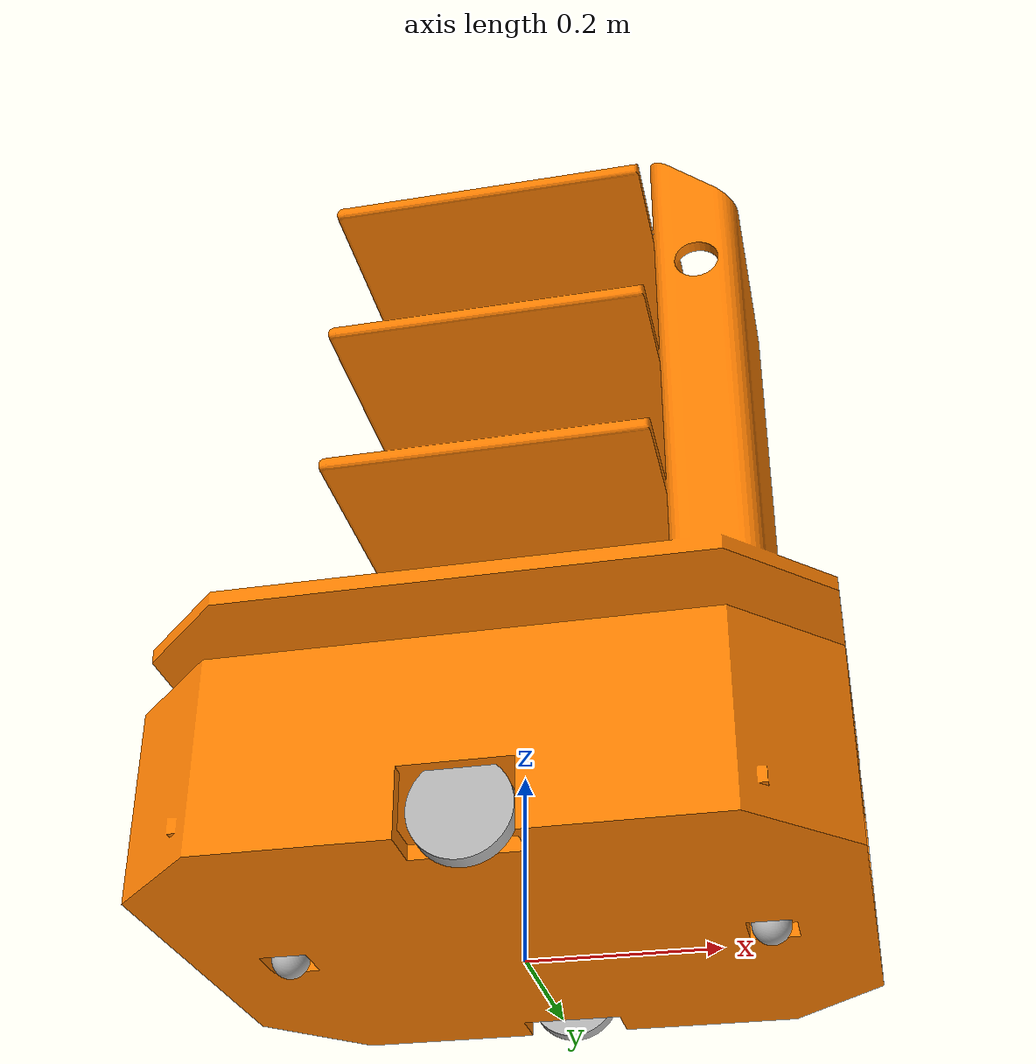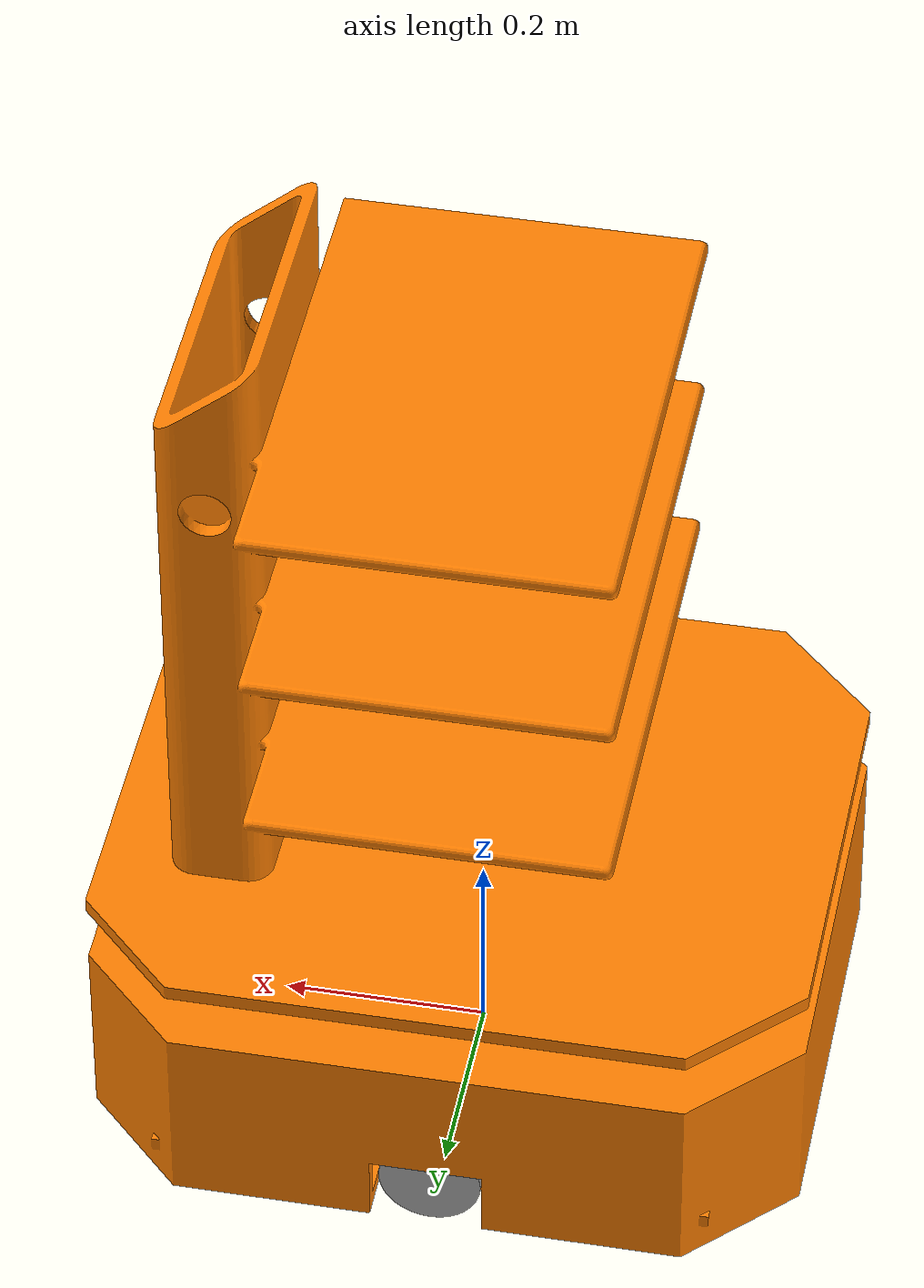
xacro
<?xml version="1.0" ?>
<robot name="shopmate_bot" xmlns:xacro="http://www.ros.org/wiki/xacro">

    <xacro:include filename="$(find shopmate_bot_description)/urdf/materials.xacro" />
    <xacro:include filename="$(find shopmate_bot_description)/urdf/shopmate_bot.trans" />

    <gazebo>
        <plugin filename="libignition-gazebo-sensors-system.so"
                name="ignition::gazebo::systems::Sensors">
            <render_engine>ogre2</render_engine>
        </plugin>

        <plugin filename="libignition-gazebo-diff-drive-system.so"
                name="ignition::gazebo::systems::DiffDrive">

            <left_joint>base_left_wheel_joint</left_joint>
            <right_joint>base_right_wheel_joint</right_joint>
            <wheel_separation>0.52</wheel_separation>
            <wheel_radius>0.05</wheel_radius>
            <max_linear_acceleration>1.0</max_linear_acceleration>
            <topic>cmd_vel</topic>
            <odom_topic>odom</odom_topic>
            <tf_topic>tf</tf_topic>
            <frame_id>odom</frame_id>
            <child_frame_id>base_footprint</child_frame_id>
        </plugin>

        <plugin filename="libignition-gazebo-joint-state-publisher-system.so"
                name="ignition::gazebo::systems::JointStatePublisher">
            <topic>joint_states</topic>
        </plugin>
    </gazebo>

    <link name="base_footprint" />

    <link name="base_link">
        <inertial>
            <origin xyz="-0.029045 0.000502 0.318721" rpy="0 0 0"/>
            <mass value="50.0"/>
            <inertia ixx="2.5" iyy="2.5" izz="2.5" ixy="0.0" iyz="0.0" ixz="0.0"/>
        </inertial>
        <visual>
            <origin xyz="0 0 0" rpy="0 0 1.5707"/>
            <geometry>
                <mesh filename="file://$(find shopmate_bot_description)/meshes/base_link.stl" scale="0.001 0.001 0.001"/>
            </geometry>
            <material name="orange"/>
        </visual>
        <collision>
            <origin xyz="0 0 0" rpy="0 0 1.5707"/>
            <geometry>
                <mesh filename="file://$(find shopmate_bot_description)/meshes/base_link.stl" scale="0.001 0.001 0.001"/>
            </geometry>
        </collision>
    </link>

    <link name="right_wheel_link_1">
        <inertial>
            <origin xyz="0 0.01 0" rpy="0 0 0"/>
            <mass value="1.2"/>
            <inertia ixx="0.002" iyy="0.002" izz="0.002" ixy="0" iyz="0" ixz="0"/>
        </inertial>
        <visual>
            <origin xyz="0 0.26 -0.05" rpy="0 0 1.5707"/>
            <geometry>
                <mesh filename="file://$(find shopmate_bot_description)/meshes/right_wheel_link_1.stl" scale="0.001 0.001 0.001"/>
            </geometry>
            <material name="silver"/>
        </visual>
        <collision>
            <origin xyz="0 0 0" rpy="1.5707 0 0"/>
            <geometry>
                <cylinder radius="0.05" length="0.04"/>
            </geometry>
            <surface>
                <friction>
                    <ode>
                        <mu>1.0</mu>
                        <mu2>1.0</mu2>
                    </ode>
                </friction>
            </surface>
        </collision>
    </link>

    <link name="left_wheel_link_1">
        <inertial>
            <origin xyz="0 -0.01 0" rpy="0 0 0"/>
            <mass value="1.2"/>
            <inertia ixx="0.002" iyy="0.002" izz="0.002" ixy="0" iyz="0" ixz="0"/>
        </inertial>
        <visual>
            <origin xyz="0 -0.26 -0.05" rpy="0 0 1.5707"/>
            <geometry>
                <mesh filename="file://$(find shopmate_bot_description)/meshes/left_wheel_link_1.stl" scale="0.001 0.001 0.001"/>
            </geometry>
            <material name="silver"/>
        </visual>
        <collision>
            <origin xyz="0 0 0" rpy="1.5707 0 0"/>
            <geometry>
                <cylinder radius="0.05" length="0.04"/>
            </geometry>
            <surface>
                <friction>
                    <ode>
                        <mu>1.0</mu>
                        <mu2>1.0</mu2>
                    </ode>
                </friction>
            </surface>
        </collision>
    </link>

    <link name="lidar_link_1">
        <inertial>
            <origin xyz="0 0 0.01" rpy="0 0 0"/>
            <mass value="0.1"/>
            <inertia ixx="0.0001" iyy="0.0001" izz="0.0001" ixy="0" iyz="0" ixz="0"/>
        </inertial>
        <visual>
            <origin xyz="-0.3 0 -0.24" rpy="0 0 1.5707"/>
            <geometry>
                <mesh filename="file://$(find shopmate_bot_description)/meshes/lidar_link_1.stl" scale="0.001 0.001 0.001"/>
            </geometry>
            <material name="red"/>
        </visual>
        <collision>
            <origin xyz="-0.3 0 -0.24" rpy="0 0 1.5707"/>
            <geometry>
                <mesh filename="file://$(find shopmate_bot_description)/meshes/lidar_link_1.stl" scale="0.001 0.001 0.001"/>
            </geometry>
        </collision>
    </link>

    <gazebo reference="lidar_link_1">
        <sensor name="lidar" type="gpu_lidar">
            <pose>0 0 0 0 0 0</pose>
            <always_on>true</always_on>
            <visualize>true</visualize>
            <update_rate>10</update_rate>
            <topic>scan</topic>
            <gz_frame_id>lidar_link_1</gz_frame_id>
            <ray>
                <scan>
                    <horizontal>
                        <samples>360</samples>
                        <resolution>1</resolution>
                        <min_angle>-3.14</min_angle>
                        <max_angle>3.14</max_angle>
                    </horizontal>
                </scan>
                <range>
                    <min>0.15</min>
                    <max>12.0</max>
                    <resolution>0.01</resolution>
                </range>
            </ray>
        </sensor>
    </gazebo>

    <link name="caster_front_1">
        <inertial>
            <origin xyz="-0.0049 0 -0.0195" rpy="0 0 0"/>
            <mass value="0.381"/>
            <inertia ixx="0.0001" iyy="0.0001" izz="0.0001" ixy="0" iyz="0" ixz="0"/>
        </inertial>
        <visual>
            <origin xyz="-0.243787 0 -0.04529" rpy="0 0 1.5707"/>
            <geometry>
                <mesh filename="file://$(find shopmate_bot_description)/meshes/caster_front_1.stl" scale="0.001 0.001 0.001"/>
            </geometry>
            <material name="silver"/>
        </visual>
        <collision>
            <origin xyz="0 0 0" rpy="0 0 0"/>
            <geometry>
                <sphere radius="0.045"/>
            </geometry>
            <surface>
                <friction>
                    <ode>
                        <mu>0.0</mu>
                        <mu2>0.0</mu2>
                    </ode>
                </friction>
            </surface>
        </collision>
    </link>

    <link name="caster_rear_1">
        <inertial>
            <origin xyz="0.0049 0 -0.0195" rpy="0 0 0"/>
            <mass value="0.381"/>
            <inertia ixx="0.0001" iyy="0.0001" izz="0.0001" ixy="0" iyz="0" ixz="0"/>
        </inertial>
        <visual>
            <origin xyz="0.243787 0 -0.04529" rpy="0 0 1.5707"/>
            <geometry>
                <mesh filename="file://$(find shopmate_bot_description)/meshes/caster_rear_1.stl" scale="0.001 0.001 0.001"/>
            </geometry>
            <material name="silver"/>
        </visual>
        <collision>
            <origin xyz="0 0 0" rpy="0 0 0"/>
            <geometry>
                <sphere radius="0.045"/>
            </geometry>
            <surface>
                <friction>
                    <ode>
                        <mu>0.0</mu>
                        <mu2>0.0</mu2>
                    </ode>
                </friction>
            </surface>
        </collision>
    </link>

    <joint name="base_joint" type="fixed">
        <parent link="base_footprint" />
        <child link="base_link" />
        <origin xyz="0 0 0" rpy="0 0 0"/>
    </joint>

    <joint name="base_right_wheel_joint" type="continuous">
        <origin xyz="0.0 -0.26 0.05" rpy="0 0 0"/>
        <parent link="base_link"/>
        <child link="right_wheel_link_1"/>
        <axis xyz="0 1 0"/>
    </joint>

    <joint name="base_left_wheel_joint" type="continuous">
        <origin xyz="0.0 0.26 0.05" rpy="0 0 0"/>
        <parent link="base_link"/>
        <child link="left_wheel_link_1"/>
        <axis xyz="0 1 0"/>
    </joint>

    <joint name="base_lidar_joint" type="fixed">
        <origin xyz="0.25 0.0 0.24" rpy="0 0 3.14159"/>
        <parent link="base_link"/>
        <child link="lidar_link_1"/>
    </joint>

    <joint name="base_caster_front_joint" type="fixed">
        <origin xyz="0.243787 0.0 0.04529" rpy="0 0 0"/>
        <parent link="base_link"/>
        <child link="caster_front_1"/>
    </joint>

    <joint name="base_caster_rear_joint" type="fixed">
        <origin xyz="-0.243787 0.0 0.04529" rpy="0 0 0"/>
        <parent link="base_link"/>
        <child link="caster_rear_1"/>
    </joint>

</robot>

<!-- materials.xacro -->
<robot name="shopmate_bot" xmlns:xacro="http://www.ros.org/wiki/xacro" >

    <material name="silver">
      <color rgba="0.7 0.7 0.7 1.0"/>
    </material>

    <material name="orange">
      <color rgba="1.0 0.5 0.0 1.0"/>
    </material>

    <material name="red">
      <color rgba="1.0 0.0 0.0 1.0"/>
    </material>

</robot>
